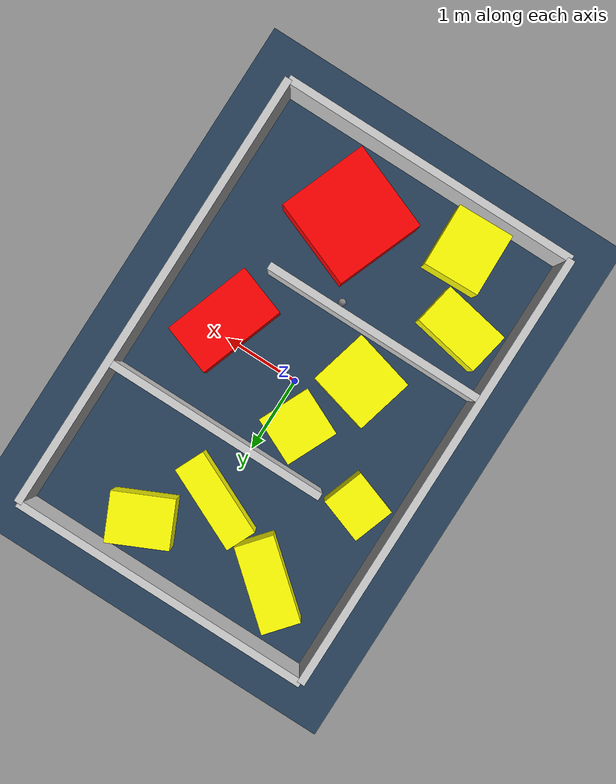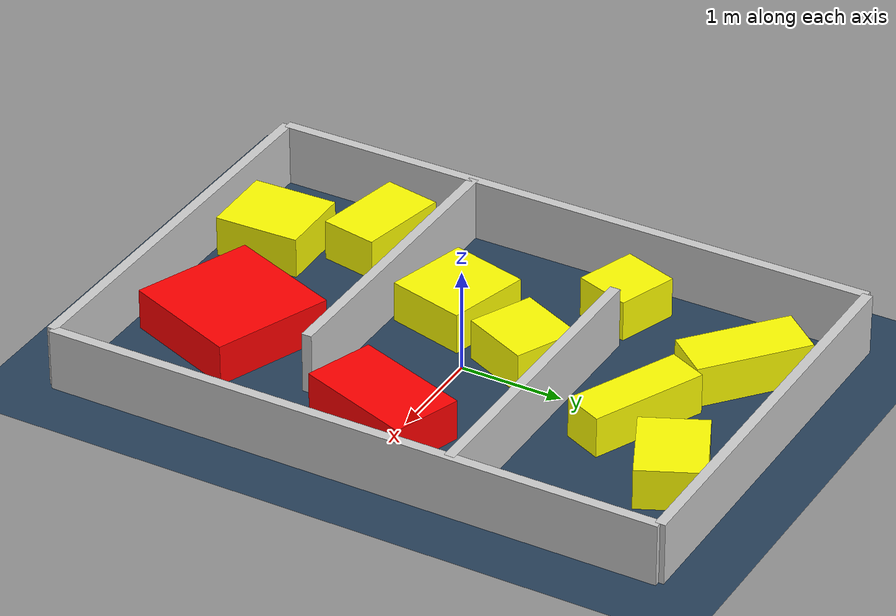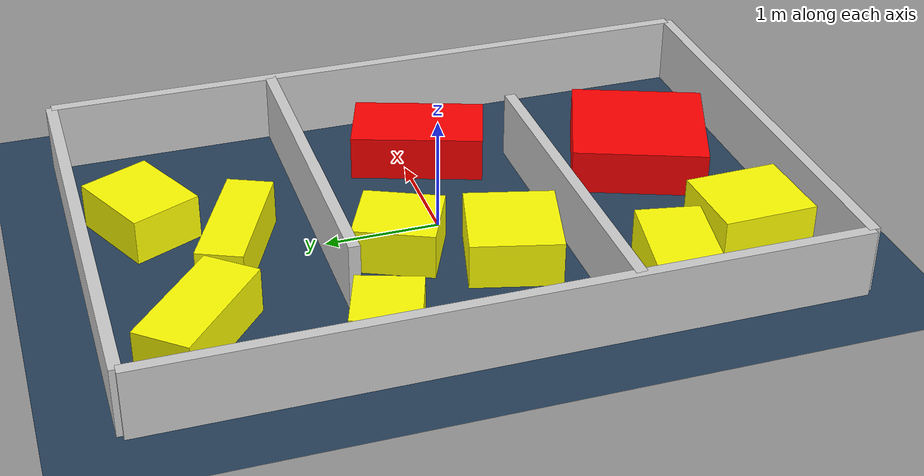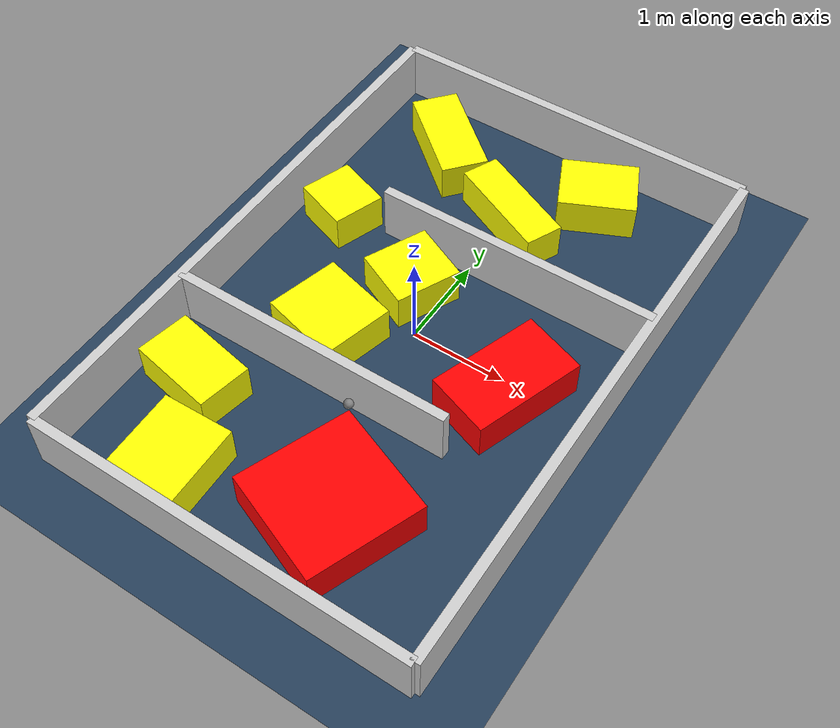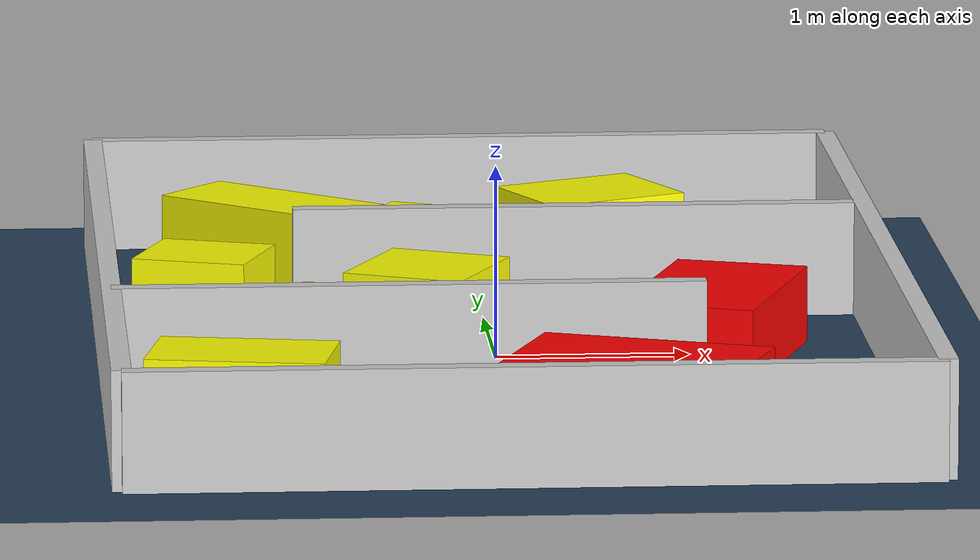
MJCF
<?xml version="1.0" ?>
<mujoco model="generated_environment">
  <option timestep="0.01" integrator="RK4" cone="elliptic"/>
  <default>
    <geom density="1"/>
  </default>
  <asset>
    <texture builtin="gradient" height="3072" rgb1="0.3 0.5 0.7" rgb2="0 0 0" type="skybox" width="512"/>
    <texture builtin="checker" height="300" mark="edge" markrgb="0.8 0.8 0.8" name="groundplane" rgb1="0.2 0.3 0.4" rgb2="0.1 0.2 0.3" type="2d" width="300"/>
    <material name="groundplane" reflectance="0.2" texrepeat="5 5" texture="groundplane" texuniform="true"/>
    <material name="robot" rgba="0.0 1.0 0.0 1"/>
  </asset>
  <worldbody>
    <light dir="0 0 -1" directional="true" pos="0 0 1.5"/>
    <geom condim="4" friction="1.0 0.005 0.001" material="groundplane" name="floor" size="0 0 0.05" type="plane"/>
    <body name="walls">
      <geom name="wall_1" condim="4" pos="-2.0 0.0 0.3" rgba="0.800000011920929 0.800000011920929 0.800000011920929 1.0" size="0.05 3.0 0.3" type="box"/>
      <geom name="wall_2" condim="4" pos="2.0 0.0 0.3" rgba="0.800000011920929 0.800000011920929 0.800000011920929 1.0" size="0.05 3.0 0.3" type="box"/>
      <geom name="wall_3" condim="4" pos="0.0 -3.0 0.3" rgba="0.800000011920929 0.800000011920929 0.800000011920929 1.0" size="2.0 0.05 0.3" type="box"/>
      <geom name="wall_4" condim="4" pos="0.0 3.0 0.3" rgba="0.800000011920929 0.800000011920929 0.800000011920929 1.0" size="2.0 0.05 0.3" type="box"/>
      <geom name="wall_5" condim="4" pos="-0.5 -1.0 0.3" rgba="0.800000011920929 0.800000011920929 0.800000011920929 1.0" size="1.5 0.05 0.3" type="box"/>
      <geom name="wall_6" condim="4" pos="0.5 1.0 0.3" rgba="0.800000011920929 0.800000011920929 0.800000011920929 1.0" size="1.5 0.05 0.3" type="box"/>
    </body>
    <body name="robot">
      <joint name="joint_x" type="slide" pos="0 0 0" axis="1 0 0"/>
      <joint name="joint_y" type="slide" pos="0 0 0" axis="0 1 0"/>
      <geom name="robot" type="sphere" pos="0.03129432240778818 -1.1332160269345266 0.2" size="0.05" mass="5." friction="1.0 0.005 0.0001" condim="4"/>
      <site name="sensor_ball"/>
    </body>
    <body name="obstacle_1_movable">
      <geom name="obstacle_1_movable" condim="4" pos="-0.3284971851729177 0.443899253272821 0.2" euler="0 0 155.1859122311356" friction="1.0 0.005 0.001" rgba="1 1 0 1" size="0.32582048751334425 0.350994869323652 0.2" type="box" mass="0.1"/>
      <joint type="free"/>
    </body>
    <body name="obstacle_2_static">
      <geom name="obstacle_2_static" condim="4" pos="1.118674717470575 -0.1624870358002548 0.2" euler="0 0 250.874401189958" friction="1.0 0.005 0.001" rgba="1 0 0 1" size="0.5889134289660135 0.3464264020442171 0.2" type="box"/>
    </body>
    <body name="obstacle_3_movable">
      <geom name="obstacle_3_movable" condim="4" pos="0.030966879978781225 1.746061096201759 0.2" euler="0 0 335.3625370794429" friction="1.0 0.005 0.001" rgba="1 1 0 1" size="0.581421811680499 0.20275255148488547 0.2" type="box" mass="0.1"/>
      <joint type="free"/>
    </body>
    <body name="obstacle_4_movable">
      <geom name="obstacle_4_movable" condim="4" pos="-0.684810820984964 -0.43139403192730486 0.2" euler="0 0 345.4132813316981" friction="1.0 0.005 0.001" rgba="1 1 0 1" size="0.4163726620567465 0.39021597476231784 0.2" type="box" mass="0.1"/>
      <joint type="free"/>
    </body>
    <body name="obstacle_5_static">
      <geom name="obstacle_5_static" condim="4" pos="0.5054511116732701 -2.0688806369678088 0.2" euler="0 0 248.83836251468037" friction="1.0 0.005 0.001" rgba="1 0 0 1" size="0.5988910883440408 0.5981427004985038 0.2" type="box"/>
    </body>
    <body name="obstacle_6_movable">
      <geom name="obstacle_6_movable" condim="4" pos="0.670308942947051 2.435594251331432 0.2" euler="0 0 294.88032666090186" friction="1.0 0.005 0.001" rgba="1 1 0 1" size="0.31977847590810604 0.4028776946821242 0.2" type="box" mass="0.1"/>
      <joint type="free"/>
    </body>
    <body name="obstacle_7_movable">
      <geom name="obstacle_7_movable" condim="4" pos="-1.3652660072749334 -1.624591890790274 0.2" euler="0 0 79.31509312913767" friction="1.0 0.005 0.001" rgba="1 1 0 1" size="0.2809843524490245 0.45260634632346647 0.2" type="box" mass="0.1"/>
      <joint type="free"/>
    </body>
    <body name="obstacle_8_movable">
      <geom name="obstacle_8_movable" condim="4" pos="-1.052915002860275 2.261309100129137 0.2" euler="0 0 139.9162653555953" friction="1.0 0.005 0.001" rgba="1 1 0 1" size="0.5577227725438063 0.25250820508417615 0.2" type="box" mass="0.1"/>
      <joint type="free"/>
    </body>
    <body name="obstacle_9_movable">
      <geom name="obstacle_9_movable" condim="4" pos="-1.4708683623193477 0.8698474923746433 0.2" euler="0 0 70.89019131436717" friction="1.0 0.005 0.001" rgba="1 1 0 1" size="0.2805872550179632 0.30427804292370636 0.2" type="box" mass="0.1"/>
      <joint type="free"/>
    </body>
    <body name="obstacle_10_movable">
      <geom name="obstacle_10_movable" condim="4" pos="-0.9205541472563921 -2.477862116497054 0.2" euler="0 0 181.56375648822134" friction="1.0 0.005 0.001" rgba="1 1 0 1" size="0.3718452474308529 0.4177202016602469 0.2" type="box" mass="0.1"/>
      <joint type="free"/>
    </body>
  </worldbody>
  <actuator>
    <motor name="actuator_x" joint="joint_x" gear="1" ctrlrange="-1 1"/>
    <motor name="actuator_y" joint="joint_y" gear="1" ctrlrange="-1 1"/>
  </actuator>
</mujoco>
